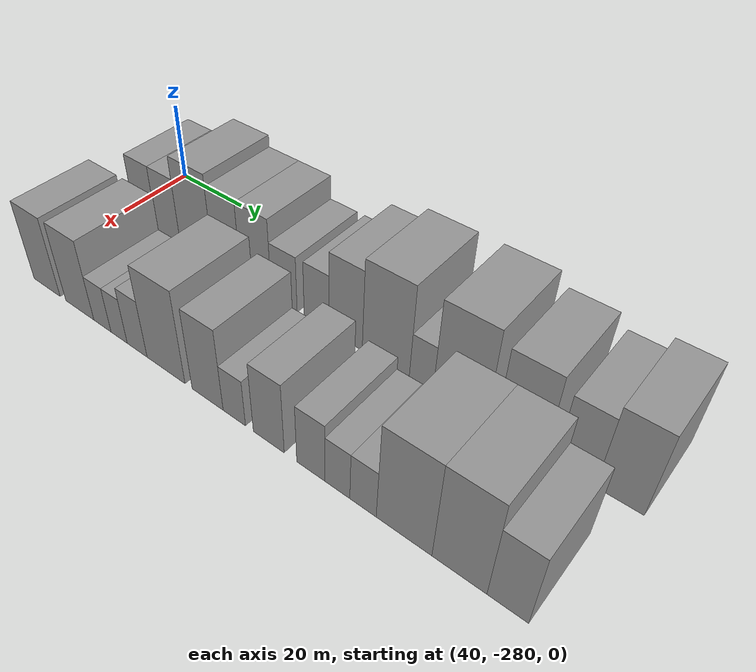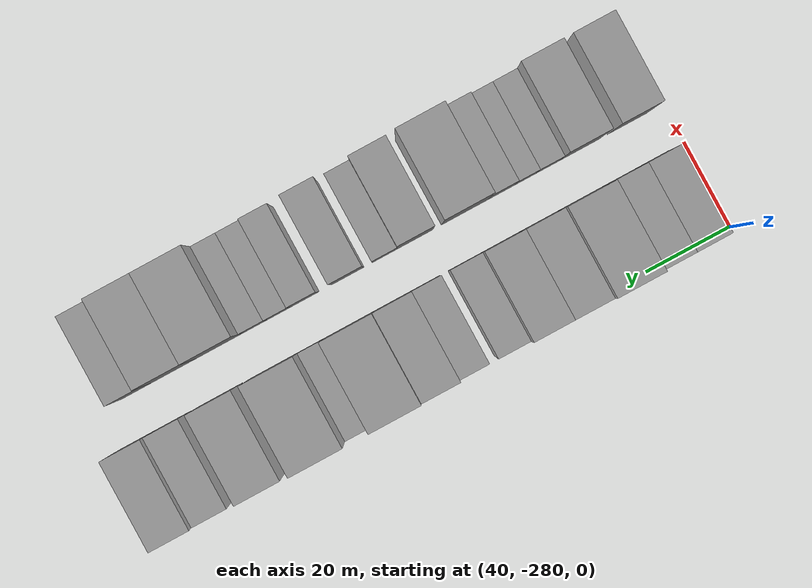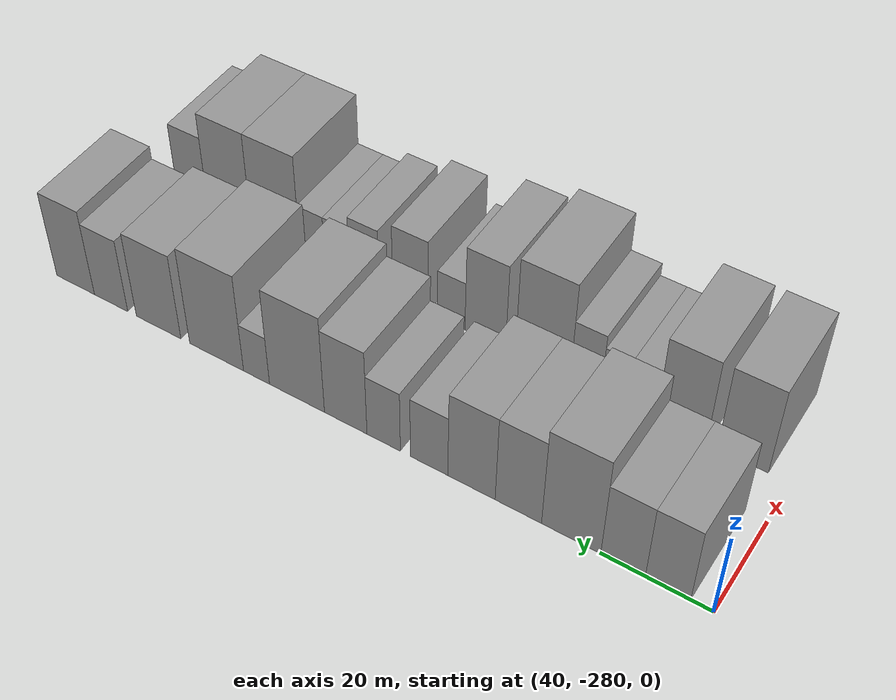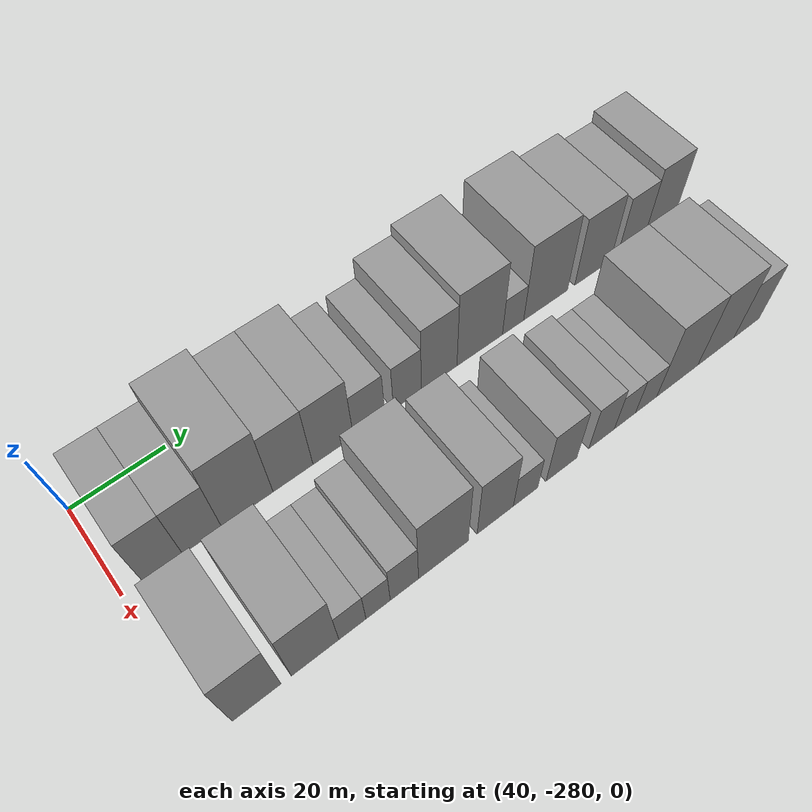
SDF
<sdf version="1.6">
 <world name="default">
  <model name="building_1">
   <static>1</static>
   <pose>50.0000 -272.0312 0 0.000000 0.000000 0.000000</pose>
   <link name="link">
    <pose>0 0 9.00 0 0 0</pose>
    <collision name="collision"><geometry><box><size>20.0000 7.9376 18.0000</size></box></geometry></collision>
    <visual name="visual">
     <cast_shadows>0</cast_shadows>
     <geometry><box><size>20.0000 7.9376 18.0000</size></box></geometry>
     <material>
      <script>
       <uri>model://grey_wall/materials/scripts</uri>
       <uri>model://grey_wall/materials/textures</uri>
       <name>vrc/grey_wall</name>
      </script>
     </material>
    </visual>
   </link>
  </model>
  <model name="building_2">
   <static>1</static>
   <pose>50.0000 -264.0821 0 0.000000 0.000000 0.000000</pose>
   <link name="link">
    <pose>0 0 9.00 0 0 0</pose>
    <collision name="collision"><geometry><box><size>20.0000 7.9607 18.0000</size></box></geometry></collision>
    <visual name="visual">
     <cast_shadows>0</cast_shadows>
     <geometry><box><size>20.0000 7.9607 18.0000</size></box></geometry>
     <material>
      <script>
       <uri>model://grey_wall/materials/scripts</uri>
       <uri>model://grey_wall/materials/textures</uri>
       <name>vrc/grey_wall</name>
      </script>
     </material>
    </visual>
   </link>
  </model>
  <model name="building_3">
   <static>1</static>
   <pose>50.0000 -254.6737 0 0.000000 0.000000 0.000000</pose>
   <link name="link">
    <pose>0 0 12.00 0 0 0</pose>
    <collision name="collision"><geometry><box><size>20.0000 10.8561 24.0000</size></box></geometry></collision>
    <visual name="visual">
     <cast_shadows>0</cast_shadows>
     <geometry><box><size>20.0000 10.8561 24.0000</size></box></geometry>
     <material>
      <script>
       <uri>model://grey_wall/materials/scripts</uri>
       <uri>model://grey_wall/materials/textures</uri>
       <name>vrc/grey_wall</name>
      </script>
     </material>
    </visual>
   </link>
  </model>
  <model name="building_4">
   <static>1</static>
   <pose>50.0000 -244.8792 0 0.000000 0.000000 0.000000</pose>
   <link name="link">
    <pose>0 0 10.50 0 0 0</pose>
    <collision name="collision"><geometry><box><size>20.0000 8.7328 21.0000</size></box></geometry></collision>
    <visual name="visual">
     <cast_shadows>0</cast_shadows>
     <geometry><box><size>20.0000 8.7328 21.0000</size></box></geometry>
     <material>
      <script>
       <uri>model://grey_wall/materials/scripts</uri>
       <uri>model://grey_wall/materials/textures</uri>
       <name>vrc/grey_wall</name>
      </script>
     </material>
    </visual>
   </link>
  </model>
  <model name="building_5">
   <static>1</static>
   <pose>50.0000 -235.9387 0 0.000000 0.000000 0.000000</pose>
   <link name="link">
    <pose>0 0 10.50 0 0 0</pose>
    <collision name="collision"><geometry><box><size>20.0000 9.1483 21.0000</size></box></geometry></collision>
    <visual name="visual">
     <cast_shadows>0</cast_shadows>
     <geometry><box><size>20.0000 9.1483 21.0000</size></box></geometry>
     <material>
      <script>
       <uri>model://grey_wall/materials/scripts</uri>
       <uri>model://grey_wall/materials/textures</uri>
       <name>vrc/grey_wall</name>
      </script>
     </material>
    </visual>
   </link>
  </model>
  <model name="building_6">
   <static>1</static>
   <pose>50.0000 -227.6828 0 0.000000 0.000000 0.000000</pose>
   <link name="link">
    <pose>0 0 7.50 0 0 0</pose>
    <collision name="collision"><geometry><box><size>20.0000 7.3636 15.0000</size></box></geometry></collision>
    <visual name="visual">
     <cast_shadows>0</cast_shadows>
     <geometry><box><size>20.0000 7.3636 15.0000</size></box></geometry>
     <material>
      <script>
       <uri>model://grey_wall/materials/scripts</uri>
       <uri>model://grey_wall/materials/textures</uri>
       <name>vrc/grey_wall</name>
      </script>
     </material>
    </visual>
   </link>
  </model>
  <model name="building_7">
   <static>1</static>
   <pose>50.0000 -218.6321 0 0.000000 0.000000 0.000000</pose>
   <link name="link">
    <pose>0 0 7.50 0 0 0</pose>
    <collision name="collision"><geometry><box><size>20.0000 6.7378 15.0000</size></box></geometry></collision>
    <visual name="visual">
     <cast_shadows>0</cast_shadows>
     <geometry><box><size>20.0000 6.7378 15.0000</size></box></geometry>
     <material>
      <script>
       <uri>model://grey_wall/materials/scripts</uri>
       <uri>model://grey_wall/materials/textures</uri>
       <name>vrc/grey_wall</name>
      </script>
     </material>
    </visual>
   </link>
  </model>
  <model name="building_8">
   <static>1</static>
   <pose>50.0000 -210.8865 0 0.000000 0.000000 0.000000</pose>
   <link name="link">
    <pose>0 0 10.50 0 0 0</pose>
    <collision name="collision"><geometry><box><size>20.0000 8.7534 21.0000</size></box></geometry></collision>
    <visual name="visual">
     <cast_shadows>0</cast_shadows>
     <geometry><box><size>20.0000 8.7534 21.0000</size></box></geometry>
     <material>
      <script>
       <uri>model://grey_wall/materials/scripts</uri>
       <uri>model://grey_wall/materials/textures</uri>
       <name>vrc/grey_wall</name>
      </script>
     </material>
    </visual>
   </link>
  </model>
  <model name="building_9">
   <static>1</static>
   <pose>50.0000 -200.6909 0 0.000000 0.000000 0.000000</pose>
   <link name="link">
    <pose>0 0 12.00 0 0 0</pose>
    <collision name="collision"><geometry><box><size>20.0000 11.6380 24.0000</size></box></geometry></collision>
    <visual name="visual">
     <cast_shadows>0</cast_shadows>
     <geometry><box><size>20.0000 11.6380 24.0000</size></box></geometry>
     <material>
      <script>
       <uri>model://grey_wall/materials/scripts</uri>
       <uri>model://grey_wall/materials/textures</uri>
       <name>vrc/grey_wall</name>
      </script>
     </material>
    </visual>
   </link>
  </model>
  <model name="building_10">
   <static>1</static>
   <pose>50.0000 -192.0684 0 0.000000 0.000000 0.000000</pose>
   <link name="link">
    <pose>0 0 6.00 0 0 0</pose>
    <collision name="collision"><geometry><box><size>20.0000 5.6070 12.0000</size></box></geometry></collision>
    <visual name="visual">
     <cast_shadows>0</cast_shadows>
     <geometry><box><size>20.0000 5.6070 12.0000</size></box></geometry>
     <material>
      <script>
       <uri>model://grey_wall/materials/scripts</uri>
       <uri>model://grey_wall/materials/textures</uri>
       <name>vrc/grey_wall</name>
      </script>
     </material>
    </visual>
   </link>
  </model>
  <model name="building_11">
   <static>1</static>
   <pose>50.0000 -183.3076 0 0.000000 0.000000 0.000000</pose>
   <link name="link">
    <pose>0 0 12.00 0 0 0</pose>
    <collision name="collision"><geometry><box><size>20.0000 11.9145 24.0000</size></box></geometry></collision>
    <visual name="visual">
     <cast_shadows>0</cast_shadows>
     <geometry><box><size>20.0000 11.9145 24.0000</size></box></geometry>
     <material>
      <script>
       <uri>model://grey_wall/materials/scripts</uri>
       <uri>model://grey_wall/materials/textures</uri>
       <name>vrc/grey_wall</name>
      </script>
     </material>
    </visual>
   </link>
  </model>
  <model name="building_12">
   <static>1</static>
   <pose>50.0000 -170.2685 0 0.000000 0.000000 0.000000</pose>
   <link name="link">
    <pose>0 0 10.50 0 0 0</pose>
    <collision name="collision"><geometry><box><size>20.0000 10.1637 21.0000</size></box></geometry></collision>
    <visual name="visual">
     <cast_shadows>0</cast_shadows>
     <geometry><box><size>20.0000 10.1637 21.0000</size></box></geometry>
     <material>
      <script>
       <uri>model://grey_wall/materials/scripts</uri>
       <uri>model://grey_wall/materials/textures</uri>
       <name>vrc/grey_wall</name>
      </script>
     </material>
    </visual>
   </link>
  </model>
  <model name="building_13">
   <static>1</static>
   <pose>50.0000 -159.2767 0 0.000000 0.000000 0.000000</pose>
   <link name="link">
    <pose>0 0 9.00 0 0 0</pose>
    <collision name="collision"><geometry><box><size>20.0000 7.8200 18.0000</size></box></geometry></collision>
    <visual name="visual">
     <cast_shadows>0</cast_shadows>
     <geometry><box><size>20.0000 7.8200 18.0000</size></box></geometry>
     <material>
      <script>
       <uri>model://grey_wall/materials/scripts</uri>
       <uri>model://grey_wall/materials/textures</uri>
       <name>vrc/grey_wall</name>
      </script>
     </material>
    </visual>
   </link>
  </model>
  <model name="building_14">
   <static>1</static>
   <pose>50.0000 -150.8688 0 0.000000 0.000000 0.000000</pose>
   <link name="link">
    <pose>0 0 10.50 0 0 0</pose>
    <collision name="collision"><geometry><box><size>20.0000 8.9957 21.0000</size></box></geometry></collision>
    <visual name="visual">
     <cast_shadows>0</cast_shadows>
     <geometry><box><size>20.0000 8.9957 21.0000</size></box></geometry>
     <material>
      <script>
       <uri>model://grey_wall/materials/scripts</uri>
       <uri>model://grey_wall/materials/textures</uri>
       <name>vrc/grey_wall</name>
      </script>
     </material>
    </visual>
   </link>
  </model>
  <model name="building_60">
   <static>1</static>
   <pose>79.0000 -271.3377 0 0.000000 0.000000 0.000000</pose>
   <link name="link">
    <pose>0 0 10.50 0 0 0</pose>
    <collision name="collision"><geometry><box><size>20.0000 9.3246 21.0000</size></box></geometry></collision>
    <visual name="visual">
     <cast_shadows>0</cast_shadows>
     <geometry><box><size>20.0000 9.3246 21.0000</size></box></geometry>
     <material>
      <script>
       <uri>model://grey_wall/materials/scripts</uri>
       <uri>model://grey_wall/materials/textures</uri>
       <name>vrc/grey_wall</name>
      </script>
     </material>
    </visual>
   </link>
  </model>
  <model name="building_61">
   <static>1</static>
   <pose>79.0000 -259.9252 0 0.000000 0.000000 0.000000</pose>
   <link name="link">
    <pose>0 0 10.50 0 0 0</pose>
    <collision name="collision"><geometry><box><size>20.0000 9.5004 21.0000</size></box></geometry></collision>
    <visual name="visual">
     <cast_shadows>0</cast_shadows>
     <geometry><box><size>20.0000 9.5004 21.0000</size></box></geometry>
     <material>
      <script>
       <uri>model://grey_wall/materials/scripts</uri>
       <uri>model://grey_wall/materials/textures</uri>
       <name>vrc/grey_wall</name>
      </script>
     </material>
    </visual>
   </link>
  </model>
  <model name="building_62">
   <static>1</static>
   <pose>79.0000 -252.3836 0 0.000000 0.000000 0.000000</pose>
   <link name="link">
    <pose>0 0 6.00 0 0 0</pose>
    <collision name="collision"><geometry><box><size>20.0000 5.5828 12.0000</size></box></geometry></collision>
    <visual name="visual">
     <cast_shadows>0</cast_shadows>
     <geometry><box><size>20.0000 5.5828 12.0000</size></box></geometry>
     <material>
      <script>
       <uri>model://grey_wall/materials/scripts</uri>
       <uri>model://grey_wall/materials/textures</uri>
       <name>vrc/grey_wall</name>
      </script>
     </material>
    </visual>
   </link>
  </model>
  <model name="building_63">
   <static>1</static>
   <pose>79.0000 -247.0357 0 0.000000 0.000000 0.000000</pose>
   <link name="link">
    <pose>0 0 6.00 0 0 0</pose>
    <collision name="collision"><geometry><box><size>20.0000 5.1130 12.0000</size></box></geometry></collision>
    <visual name="visual">
     <cast_shadows>0</cast_shadows>
     <geometry><box><size>20.0000 5.1130 12.0000</size></box></geometry>
     <material>
      <script>
       <uri>model://grey_wall/materials/scripts</uri>
       <uri>model://grey_wall/materials/textures</uri>
       <name>vrc/grey_wall</name>
      </script>
     </material>
    </visual>
   </link>
  </model>
  <model name="building_64">
   <static>1</static>
   <pose>79.0000 -241.4400 0 0.000000 0.000000 0.000000</pose>
   <link name="link">
    <pose>0 0 7.50 0 0 0</pose>
    <collision name="collision"><geometry><box><size>20.0000 6.0784 15.0000</size></box></geometry></collision>
    <visual name="visual">
     <cast_shadows>0</cast_shadows>
     <geometry><box><size>20.0000 6.0784 15.0000</size></box></geometry>
     <material>
      <script>
       <uri>model://grey_wall/materials/scripts</uri>
       <uri>model://grey_wall/materials/textures</uri>
       <name>vrc/grey_wall</name>
      </script>
     </material>
    </visual>
   </link>
  </model>
  <model name="building_65">
   <static>1</static>
   <pose>79.0000 -232.8782 0 0.000000 0.000000 0.000000</pose>
   <link name="link">
    <pose>0 0 12.00 0 0 0</pose>
    <collision name="collision"><geometry><box><size>20.0000 11.0453 24.0000</size></box></geometry></collision>
    <visual name="visual">
     <cast_shadows>0</cast_shadows>
     <geometry><box><size>20.0000 11.0453 24.0000</size></box></geometry>
     <material>
      <script>
       <uri>model://grey_wall/materials/scripts</uri>
       <uri>model://grey_wall/materials/textures</uri>
       <name>vrc/grey_wall</name>
      </script>
     </material>
    </visual>
   </link>
  </model>
  <model name="building_66">
   <static>1</static>
   <pose>79.0000 -221.1347 0 0.000000 0.000000 0.000000</pose>
   <link name="link">
    <pose>0 0 10.50 0 0 0</pose>
    <collision name="collision"><geometry><box><size>20.0000 8.4416 21.0000</size></box></geometry></collision>
    <visual name="visual">
     <cast_shadows>0</cast_shadows>
     <geometry><box><size>20.0000 8.4416 21.0000</size></box></geometry>
     <material>
      <script>
       <uri>model://grey_wall/materials/scripts</uri>
       <uri>model://grey_wall/materials/textures</uri>
       <name>vrc/grey_wall</name>
      </script>
     </material>
    </visual>
   </link>
  </model>
  <model name="building_67">
   <static>1</static>
   <pose>79.0000 -214.0013 0 0.000000 0.000000 0.000000</pose>
   <link name="link">
    <pose>0 0 6.00 0 0 0</pose>
    <collision name="collision"><geometry><box><size>20.0000 5.8251 12.0000</size></box></geometry></collision>
    <visual name="visual">
     <cast_shadows>0</cast_shadows>
     <geometry><box><size>20.0000 5.8251 12.0000</size></box></geometry>
     <material>
      <script>
       <uri>model://grey_wall/materials/scripts</uri>
       <uri>model://grey_wall/materials/textures</uri>
       <name>vrc/grey_wall</name>
      </script>
     </material>
    </visual>
   </link>
  </model>
  <model name="building_68">
   <static>1</static>
   <pose>79.0000 -205.2804 0 0.000000 0.000000 0.000000</pose>
   <link name="link">
    <pose>0 0 9.00 0 0 0</pose>
    <collision name="collision"><geometry><box><size>20.0000 7.6168 18.0000</size></box></geometry></collision>
    <visual name="visual">
     <cast_shadows>0</cast_shadows>
     <geometry><box><size>20.0000 7.6168 18.0000</size></box></geometry>
     <material>
      <script>
       <uri>model://grey_wall/materials/scripts</uri>
       <uri>model://grey_wall/materials/textures</uri>
       <name>vrc/grey_wall</name>
      </script>
     </material>
    </visual>
   </link>
  </model>
  <model name="building_69">
   <static>1</static>
   <pose>79.0000 -195.1986 0 0.000000 0.000000 0.000000</pose>
   <link name="link">
    <pose>0 0 7.50 0 0 0</pose>
    <collision name="collision"><geometry><box><size>20.0000 6.5468 15.0000</size></box></geometry></collision>
    <visual name="visual">
     <cast_shadows>0</cast_shadows>
     <geometry><box><size>20.0000 6.5468 15.0000</size></box></geometry>
     <material>
      <script>
       <uri>model://grey_wall/materials/scripts</uri>
       <uri>model://grey_wall/materials/textures</uri>
       <name>vrc/grey_wall</name>
      </script>
     </material>
    </visual>
   </link>
  </model>
  <model name="building_70">
   <static>1</static>
   <pose>79.0000 -189.1685 0 0.000000 0.000000 0.000000</pose>
   <link name="link">
    <pose>0 0 6.00 0 0 0</pose>
    <collision name="collision"><geometry><box><size>20.0000 5.5134 12.0000</size></box></geometry></collision>
    <visual name="visual">
     <cast_shadows>0</cast_shadows>
     <geometry><box><size>20.0000 5.5134 12.0000</size></box></geometry>
     <material>
      <script>
       <uri>model://grey_wall/materials/scripts</uri>
       <uri>model://grey_wall/materials/textures</uri>
       <name>vrc/grey_wall</name>
      </script>
     </material>
    </visual>
   </link>
  </model>
  <model name="building_71">
   <static>1</static>
   <pose>79.0000 -183.5823 0 0.000000 0.000000 0.000000</pose>
   <link name="link">
    <pose>0 0 6.00 0 0 0</pose>
    <collision name="collision"><geometry><box><size>20.0000 5.6589 12.0000</size></box></geometry></collision>
    <visual name="visual">
     <cast_shadows>0</cast_shadows>
     <geometry><box><size>20.0000 5.6589 12.0000</size></box></geometry>
     <material>
      <script>
       <uri>model://grey_wall/materials/scripts</uri>
       <uri>model://grey_wall/materials/textures</uri>
       <name>vrc/grey_wall</name>
      </script>
     </material>
    </visual>
   </link>
  </model>
  <model name="building_72">
   <static>1</static>
   <pose>79.0000 -175.1090 0 0.000000 0.000000 0.000000</pose>
   <link name="link">
    <pose>0 0 12.00 0 0 0</pose>
    <collision name="collision"><geometry><box><size>20.0000 11.2878 24.0000</size></box></geometry></collision>
    <visual name="visual">
     <cast_shadows>0</cast_shadows>
     <geometry><box><size>20.0000 11.2878 24.0000</size></box></geometry>
     <material>
      <script>
       <uri>model://grey_wall/materials/scripts</uri>
       <uri>model://grey_wall/materials/textures</uri>
       <name>vrc/grey_wall</name>
      </script>
     </material>
    </visual>
   </link>
  </model>
  <model name="building_73">
   <static>1</static>
   <pose>79.0000 -164.2979 0 0.000000 0.000000 0.000000</pose>
   <link name="link">
    <pose>0 0 12.00 0 0 0</pose>
    <collision name="collision"><geometry><box><size>20.0000 10.3344 24.0000</size></box></geometry></collision>
    <visual name="visual">
     <cast_shadows>0</cast_shadows>
     <geometry><box><size>20.0000 10.3344 24.0000</size></box></geometry>
     <material>
      <script>
       <uri>model://grey_wall/materials/scripts</uri>
       <uri>model://grey_wall/materials/textures</uri>
       <name>vrc/grey_wall</name>
      </script>
     </material>
    </visual>
   </link>
  </model>
  <model name="building_74">
   <static>1</static>
   <pose>79.0000 -155.4454 0 0.000000 0.000000 0.000000</pose>
   <link name="link">
    <pose>0 0 9.00 0 0 0</pose>
    <collision name="collision"><geometry><box><size>20.0000 7.3706 18.0000</size></box></geometry></collision>
    <visual name="visual">
     <cast_shadows>0</cast_shadows>
     <geometry><box><size>20.0000 7.3706 18.0000</size></box></geometry>
     <material>
      <script>
       <uri>model://grey_wall/materials/scripts</uri>
       <uri>model://grey_wall/materials/textures</uri>
       <name>vrc/grey_wall</name>
      </script>
     </material>
    </visual>
   </link>
  </model>
 </world>
</sdf>
